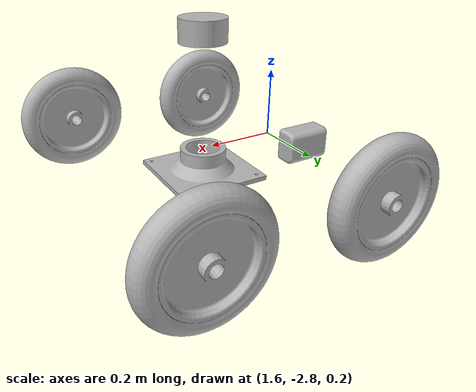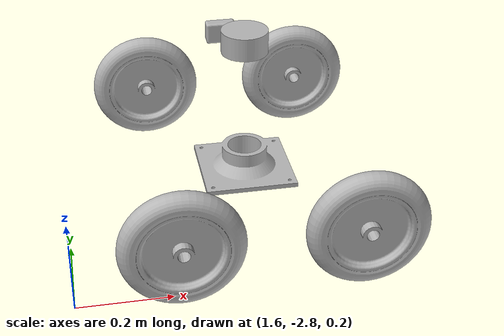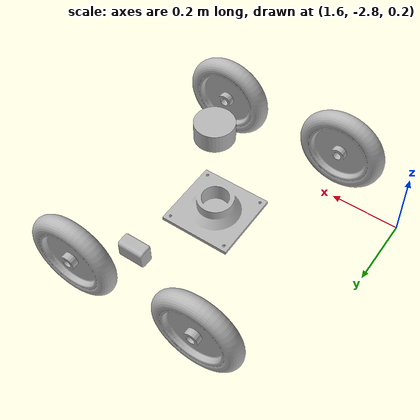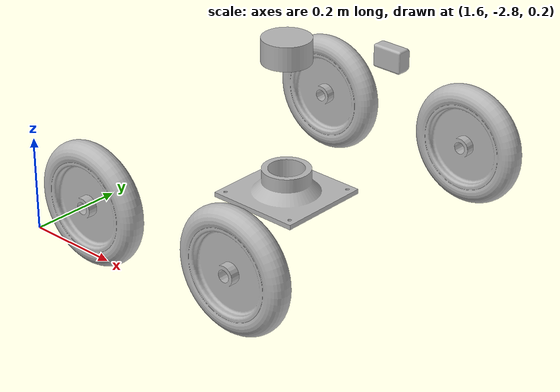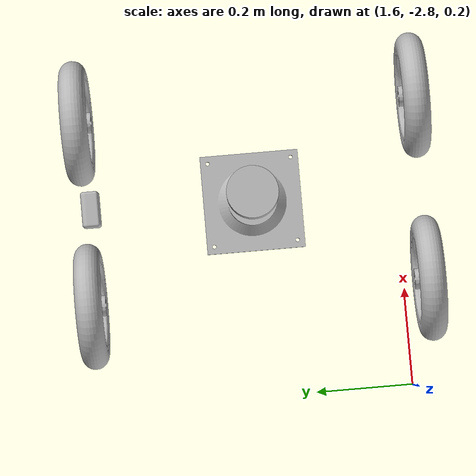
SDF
<sdf version="1.6">
 <world name="default">
  <scene>
   <ambient>0.95 0.95 0.95 1</ambient>
   <background>0.3 0.3 0.3 1</background>
   <shadows>true</shadows>
   <sky><clouds><speed>3</speed></clouds></sky>
  </scene>
  <include><uri>model://sun</uri></include>
  <spherical_coordinates>
   <surface_model>EARTH_WGS84</surface_model>
   <latitude_deg>38.161479</latitude_deg>
   <longitude_deg>-122.454630</longitude_deg>
   <elevation>488.0</elevation>
   <heading_deg>180</heading_deg>
  </spherical_coordinates>
  <physics type="ode">
   <real_time_update_rate>100.0</real_time_update_rate>
   <max_step_size>0.01</max_step_size>
   <real_time_factor>1</real_time_factor>
   <ode>
    <solver>
     <type>quick</type>
     <iters>150</iters>
     <precon_iters>0</precon_iters>
     <sor>1.400000</sor>
     <use_dynamic_moi_rescaling>1</use_dynamic_moi_rescaling>
    </solver>
    <constraints>
     <cfm>0.00001</cfm>
     <erp>0.2</erp>
     <contact_max_correcting_vel>2000.000000</contact_max_correcting_vel>
     <contact_surface_layer>0.01000</contact_surface_layer>
    </constraints>
   </ode>
  </physics>
  <include><uri>model://robot</uri><pose>2 -2.5 0.3 0 0 0</pose></include>
 </world>
</sdf>

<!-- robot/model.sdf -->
<sdf version='1.7'>
  <model name='my_bot'>
    <link name="base_footprint"/>

    <link name='base_link'>
      <inertial>
        <pose relative_to='base_joint'>0.010803 0.002865 0.178941 0 -0 0</pose>
        <mass>1.0</mass>
        <inertia>
          <ixx>0.33188</ixx>
          <ixy>0.000411165</ixy>
          <ixz>0.000451077</ixz>
          <iyy>0.275665</iyy>
          <iyz>-0.000559536</iyz>
          <izz>0.558828</izz>
        </inertia>
      </inertial>
      <collision name='base_link_collision'>
        <pose>0 0 0 0 -0 0</pose>
        <geometry>
          <mesh>
            <scale>1 1 1</scale>
            <uri>model://robot/meshes/base_link.STL</uri>
          </mesh>
        </geometry>
      </collision>
      <collision name='base_link_fixed_joint_lump__laser_frame_collision_1'>
        <pose>0 0 0.338 0 -0 0</pose>
        <geometry>
          <mesh>
            <scale>1 1 1</scale>
            <uri>model://robot/meshes/laser_frame.STL</uri>
          </mesh>
        </geometry>
      </collision>
      <collision name='base_link_fixed_joint_lump__rtk_collision_2'>
        <pose>0 0.335 0.193 0 -0 0</pose>
        <geometry>
          <mesh>
            <scale>1 1 1</scale>
            <uri>model://robot/meshes/rtk.STL</uri>
          </mesh>
        </geometry>
      </collision>
      <visual name='base_link_visual'>
        <pose>0 0 0 0 -0 0</pose>
        <geometry>
          <mesh>
            <scale>1 1 1</scale>
            <uri>model://robot/meshes/base_link.STL</uri>
          </mesh>
        </geometry>
      </visual>
      <visual name='base_link_fixed_joint_lump__laser_frame_visual_1'>
        <pose>0 0 0.338 0 -0 0</pose>
        <geometry>
          <mesh>
            <scale>1 1 1</scale>
            <uri>model://robot/meshes/laser_frame.STL</uri>
          </mesh>
        </geometry>
      </visual>
      <visual name='base_link_fixed_joint_lump__rtk_visual_2'>
        <pose>0 0.335 0.193 0 -0 0</pose>
        <geometry>
          <mesh>
            <scale>1 1 1</scale>
            <uri>model://robot/meshes/rtk.STL</uri>
          </mesh>
        </geometry>
      </visual>
    </link>

    <joint name="base_joint" type="fixed">
        <parent>base_footprint</parent>
        <child>base_link</child>
        <pose relative_to='base_footprint'>0.0 0.0 0 0 0 0</pose>
    </joint>

    <joint name='back_left_wheel_joint' type='revolute'>
      <pose relative_to='base_link'>-0.18566 0.37 0.0505 -1.5708 0 0</pose>
      <parent>base_link</parent>
      <child>back_left_wheel</child>
      <axis>
        <xyz>0 0 1</xyz>
        <limit>
          <effort>1</effort>
          <velocity>1</velocity>
          <lower>-1e+16</lower>
          <upper>1e+16</upper>
        </limit>
        <dynamics>
          <spring_reference>0</spring_reference>
          <spring_stiffness>0</spring_stiffness>
        </dynamics>
      </axis>
    </joint>
    <link name='back_left_wheel'>
      <pose relative_to='back_left_wheel_joint'>0 0 0 0 -0 0</pose>
      <inertial>
        <pose>-0 -0 -0.029 0 -0 0</pose>
        <mass>0.5</mass>
        <inertia>
          <ixx>0.00818088</ixx>
          <ixy>8.31222e-19</ixy>
          <ixz>1.55059e-19</ixz>
          <iyy>0.00818088</iyy>
          <iyz>2.65575e-17</iyz>
          <izz>0.0158039</izz>
        </inertia>
      </inertial>
      <collision name='back_left_wheel_collision'>
        <pose>0 0 0 0 -0 0</pose>
        <geometry>
          <mesh>
            <scale>1 1 1</scale>
            <uri>model://robot/meshes/back_left_wheel.STL</uri>
          </mesh>
        </geometry>
      </collision>
      <visual name='back_left_wheel_visual'>
        <pose>0 0 0 0 -0 0</pose>
        <geometry>
          <mesh>
            <scale>1 1 1</scale>
            <uri>model://robot/meshes/back_left_wheel.STL</uri>
          </mesh>
        </geometry>
      </visual>
    </link>
    <joint name='back_right_wheel_joint' type='revolute'>
      <pose relative_to='base_link'>-0.18566 -0.37 0.0505 1.5708 -0 0</pose>
      <parent>base_link</parent>
      <child>back_right_wheel</child>
      <axis>
        <xyz>0 0 -1</xyz>
        <limit>
          <effort>1</effort>
          <velocity>1</velocity>
          <lower>-1e+16</lower>
          <upper>1e+16</upper>
        </limit>
        <dynamics>
          <spring_reference>0</spring_reference>
          <spring_stiffness>0</spring_stiffness>
        </dynamics>
      </axis>
    </joint>
    <link name='back_right_wheel'>
      <pose relative_to='back_right_wheel_joint'>0 0 0 0 -0 0</pose>
      <inertial>
        <pose>0 -0 -0.029 0 -0 0</pose>
        <mass>0.5</mass>
        <inertia>
          <ixx>0.00818088</ixx>
          <ixy>-8.31222e-19</ixy>
          <ixz>-1.63529e-19</ixz>
          <iyy>0.00818088</iyy>
          <iyz>5.33493e-17</iyz>
          <izz>0.0158039</izz>
        </inertia>
      </inertial>
      <collision name='back_right_wheel_collision'>
        <pose>0 0 0 0 -0 0</pose>
        <geometry>
          <mesh>
            <scale>1 1 1</scale>
            <uri>model://robot/meshes/back_right_wheel.STL</uri>
          </mesh>
        </geometry>
      </collision>
      <visual name='back_right_wheel_visual'>
        <pose>0 0 0 0 -0 0</pose>
        <geometry>
          <mesh>
            <scale>1 1 1</scale>
            <uri>model://robot/meshes/back_right_wheel.STL</uri>
          </mesh>
        </geometry>
      </visual>
    </link>
    <joint name='front_left_wheel_joint' type='revolute'>
      <pose relative_to='base_link'>0.18566 0.37 0.0505 -1.5708 0 0</pose>
      <parent>base_link</parent>
      <child>front_left_wheel</child>
      <axis>
        <xyz>0 0 1</xyz>
        <limit>
          <effort>1</effort>
          <velocity>1</velocity>
          <lower>-1e+16</lower>
          <upper>1e+16</upper>
        </limit>
        <dynamics>
          <spring_reference>0</spring_reference>
          <spring_stiffness>0</spring_stiffness>
        </dynamics>
      </axis>
    </joint>
    <link name='front_left_wheel'>
      <pose relative_to='front_left_wheel_joint'>0 0 0 0 -0 0</pose>
      <inertial>
        <pose>0 -0 -0.029 0 -0 0</pose>
        <mass>0.5</mass>
        <inertia>
          <ixx>0.00818088</ixx>
          <ixy>1.17455e-18</ixy>
          <ixz>5.62383e-20</ixz>
          <iyy>0.00818088</iyy>
          <iyz>2.65575e-17</iyz>
          <izz>0.0158039</izz>
        </inertia>
      </inertial>
      <collision name='front_left_wheel_collision'>
        <pose>0 0 0 0 -0 0</pose>
        <geometry>
          <mesh>
            <scale>1 1 1</scale>
            <uri>model://robot/meshes/front_left_wheel.STL</uri>
          </mesh>
        </geometry>
      </collision>
      <visual name='front_left_wheel_visual'>
        <pose>0 0 0 0 -0 0</pose>
        <geometry>
          <mesh>
            <scale>1 1 1</scale>
            <uri>model://robot/meshes/front_left_wheel.STL</uri>
          </mesh>
        </geometry>
      </visual>
    </link>
    <joint name='front_right_wheel_joint' type='revolute'>
      <pose relative_to='base_link'>0.18566 -0.37 0.0505 1.5708 -0 0</pose>
      <parent>base_link</parent>
      <child>front_right_wheel</child>
      <axis>
        <xyz>0 0 -1</xyz>
        <limit>
          <effort>1</effort>
          <velocity>1</velocity>
          <lower>-1e+16</lower>
          <upper>1e+16</upper>
        </limit>
        <dynamics>
          <spring_reference>0</spring_reference>
          <spring_stiffness>0</spring_stiffness>
        </dynamics>
      </axis>
    </joint>

    <link name='front_right_wheel'>
      <pose relative_to='front_right_wheel_joint'>0 0 0 0 -0 0</pose>
      <inertial>
        <pose>0 -0 -0.029 0 -0 0</pose>
        <mass>0.5</mass>
        <inertia>
          <ixx>0.00818088</ixx>
          <ixy>1.55584e-18</ixy>
          <ixz>-1.57806e-20</ixz>
          <iyy>0.00818088</iyy>
          <iyz>2.76541e-17</iyz>
          <izz>0.0158039</izz>
        </inertia>
      </inertial>
      <collision name='front_right_wheel_collision'>
        <pose>0 0 0 0 -0 0</pose>
        <geometry>
          <mesh>
            <scale>1 1 1</scale>
            <uri>model://robot/meshes/front_right_wheel.STL</uri>
          </mesh>
        </geometry>
      </collision>
      <visual name='front_right_wheel_visual'>
        <pose>0 0 0 0 -0 0</pose>
        <geometry>
          <mesh>
            <scale>1 1 1</scale>
            <uri>model://robot/meshes/front_right_wheel.STL</uri>
          </mesh>
        </geometry>
      </visual>
    </link>

    <joint name="lidar_joint" type="fixed">
        <pose relative_to='base_link'>0 0 0.338 0 0 0</pose>
        <parent>base_link</parent>
        <child>base_scan</child>

        <axis>
          <xyz>0 0 0</xyz>
        </axis>
    </joint>
    <link name="base_scan">
        <pose relative_to='lidar_joint'>0 0 0 0 0 0</pose>
        <inertial>
          <pose>0 0 0 0 0 0</pose>
          <inertia>
            <ixx>0.001</ixx>
            <ixy>0.000</ixy>
            <ixz>0.000</ixz>
            <iyy>0.001</iyy>
            <iyz>0.000</iyz>
            <izz>0.001</izz>
          </inertia>
          <mass>0.221906397086315</mass>
        </inertial>

        <collision name="lidar_sensor_collision">
          <pose>0 0 0 0 0 0</pose>
          <geometry>
            <cylinder>
              <radius>0.0508</radius>
              <length>0.055</length>
            </cylinder>
          </geometry>
        </collision>

        <visual name="lidar_sensor_visual">
          <pose>0 0 0 0 0 0</pose>
          <geometry>
            <mesh>
              <uri>model://robot/meshes/laser_frame.STL</uri>
              <scale>0.001 0.001 0.001</scale>
            </mesh>
          </geometry>
        </visual>

        <sensor name="my_bot_sens" type="ray">
          <always_on>true</always_on>
          <visualize>false</visualize>
          <pose>0 0 0 0 0 0</pose>
          <update_rate>10</update_rate>
          <ray>
            <scan>
                <horizontal>
                  <samples>360</samples>
                  <min_angle>-3.14</min_angle>
                  <max_angle>3.14</max_angle>
                </horizontal>
            </scan>
            <range>
              <min>0.5</min>
              <max>20.0</max>
              <resolution>0.015000</resolution>
            </range>
            <noise>
              <type>gaussian</type>
              <mean>0.0</mean>
              <stddev>0.01</stddev>
            </noise>
          </ray>
          <plugin name="my_bot_scan" filename="libgazebo_ros_ray_sensor.so">
            <ros>
                <remapping>~/out:=scan</remapping>
            </ros>
            <output_type>sensor_msgs/LaserScan</output_type>
            <frame_name>base_scan</frame_name>
          </plugin>
        </sensor>
    </link>

    <joint name="imu_joint" type="fixed">
        <parent>base_link</parent>
        <child>imu_link</child>
        <pose relative_to='base_link'>0 0 0.338 0 0 0</pose>
        <axis>
          <xyz>0 0 1</xyz>
        </axis>
    </joint>

    <link name="imu_link">
        <pose relative_to='imu_joint'>0 0 0 0 0 0</pose>
        <sensor name="tb3_imu" type="imu">
          <always_on>true</always_on>
          <update_rate>200</update_rate>
          <imu>
            <angular_velocity>
              <x>
                <noise type="gaussian">
                  <mean>0.0</mean>
                  <stddev>2e-4</stddev>
                </noise>
              </x>
              <y>
                <noise type="gaussian">
                  <mean>0.0</mean>
                  <stddev>2e-4</stddev>
                </noise>
              </y>
              <z>
                <noise type="gaussian">
                  <mean>0.0</mean>
                  <stddev>2e-4</stddev>
                </noise>
              </z>
            </angular_velocity>
            <linear_acceleration>
              <x>
                <noise type="gaussian">
                  <mean>0.0</mean>
                  <stddev>1.7e-2</stddev>
                </noise>
              </x>
              <y>
                <noise type="gaussian">
                  <mean>0.0</mean>
                  <stddev>1.7e-2</stddev>
                </noise>
              </y>
              <z>
                <noise type="gaussian">
                  <mean>0.0</mean>
                  <stddev>1.7e-2</stddev>
                </noise>
              </z>
            </linear_acceleration>
          </imu>
          <plugin name="turtlebot3_imu" filename="libgazebo_ros_imu_sensor.so">
            <initial_orientation_as_reference>false</initial_orientation_as_reference>
            <ros>
              <remapping>~/out:=imu</remapping>
              </ros>
          </plugin>
        </sensor>
    </link>

    <joint name="gps_joint" type="fixed">
        <parent>base_link</parent>
        <child>gps_link</child>
        <pose relative_to='base_link'>0 0.335 0.193 0 0 0</pose>
        <axis>
          <xyz>0 0 1</xyz>
        </axis>
    </joint>

     <link name="gps_link">
        <pose relative_to='base_link'>0 0 0 0 0 0</pose>
        <inertial>
          <pose>0 0 0 0 0 0</pose>
          <inertia>
            <mass>0.001</mass>
            <ixx>0.001</ixx>
            <ixy>0.000</ixy>
            <ixz>0.000</ixz>
            <iyy>0.001</iyy>
            <iyz>0.000</iyz>
            <izz>0.001</izz>
          </inertia>
          <mass>0.125</mass>
        </inertial>
        <sensor name="tb3_gps" type="gps">
          <always_on>true</always_on>
          <update_rate>1</update_rate>
          <pose>0 0 0 0 0 0</pose>
          <gps>
            <position_sensing>
              <horizontal>
                <noise type="gaussian">
                  <mean>0.0</mean>
                  <stddev>0.01</stddev>
                </noise>
              </horizontal>
              <vertical>
                <noise type="gaussian">
                  <mean>0.0</mean>
                  <stddev>0.01</stddev>
                </noise>
              </vertical>
            </position_sensing>
          </gps>
          <plugin name="my_gps_plugin" filename="libgazebo_ros_gps_sensor.so">
            <ros>
              <remapping>~/out:=/gps/fix</remapping>
            </ros>
          </plugin>
        </sensor>
    </link>

    <plugin name="skid_steer_drive" filename="libgazebo_ros_diff_drive.so">

         <ros>
          <!-- Set namespace -->

          <!-- Remap default topics -->
          <remapping>cmd_vel:=cmd_vel</remapping>
          <remapping>odom:=odom</remapping>
          <remapping>/tf:=tf</remapping>
         </ros>

         <updateRate>500.0</updateRate>
         <robotNamespace>/</robotNamespace>

         <num_wheel_pairs>2</num_wheel_pairs>

         <left_joint>front_left_wheel_joint</left_joint>
         <right_joint>front_right_wheel_joint</right_joint>
         <left_joint>back_left_wheel_joint</left_joint>
         <right_joint>back_right_wheel_joint</right_joint>

         <wheel_separation>0.730</wheel_separation>
         <wheel_separation>0.730</wheel_separation>

         <wheel_diameter>0.25</wheel_diameter>
         <wheel_diameter>0.25</wheel_diameter>

         <max_wheel_torque>20</max_wheel_torque>
         <max_wheel_acceleration>1.0</max_wheel_acceleration>

         <publish_odom>true</publish_odom>
        <publish_odom_tf>false</publish_odom_tf>
        <publish_wheel_tf>false</publish_wheel_tf>

        <odometry_topic>odom</odometry_topic>
        <odometry_frame>odom</odometry_frame>
        <robot_base_frame>base_footprint</robot_base_frame>

      </plugin>
      <plugin name="turtlebot3_joint_state" filename="libgazebo_ros_joint_state_publisher.so">
        <ros>
            <remapping>~/out:=joint_states</remapping>
        </ros>
        <update_rate>30</update_rate>
		    <joint_name>front_left_wheel_joint</joint_name>
        <joint_name>front_right_wheel_joint</joint_name>
        <joint_name>back_left_wheel_joint</joint_name>
        <joint_name>back_right_wheel_joint</joint_name>

    </plugin>

  </model>
</sdf>
